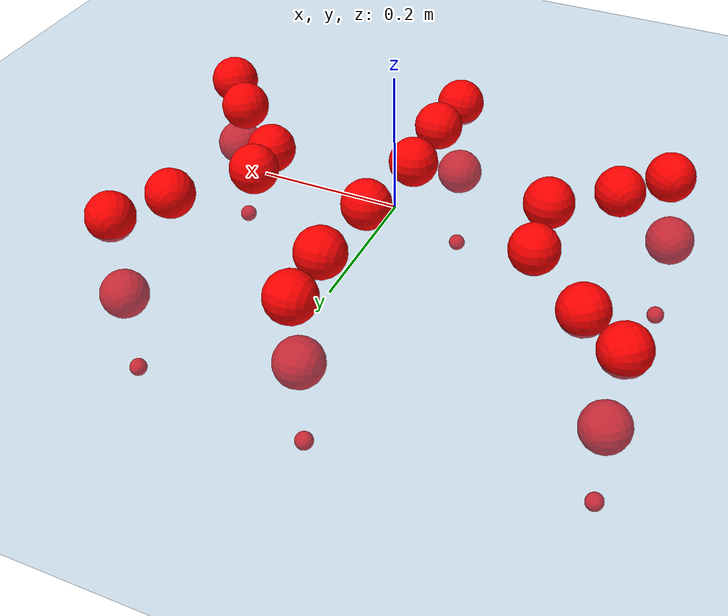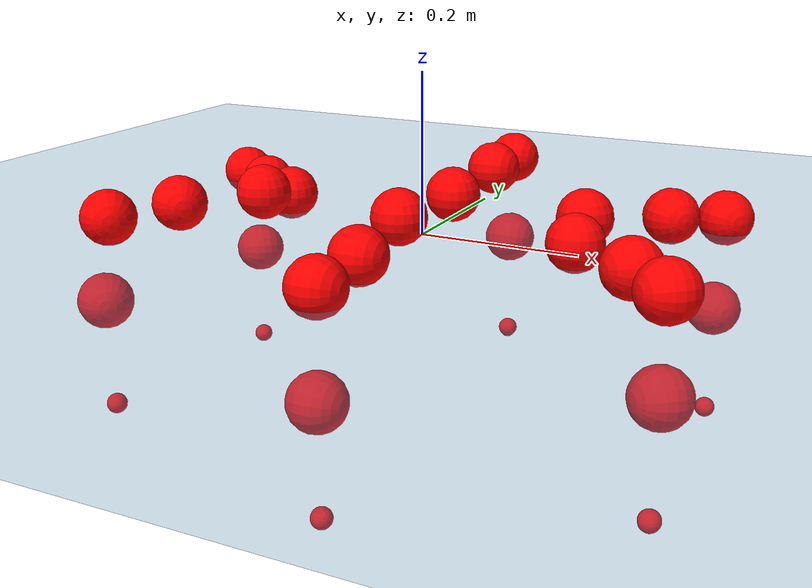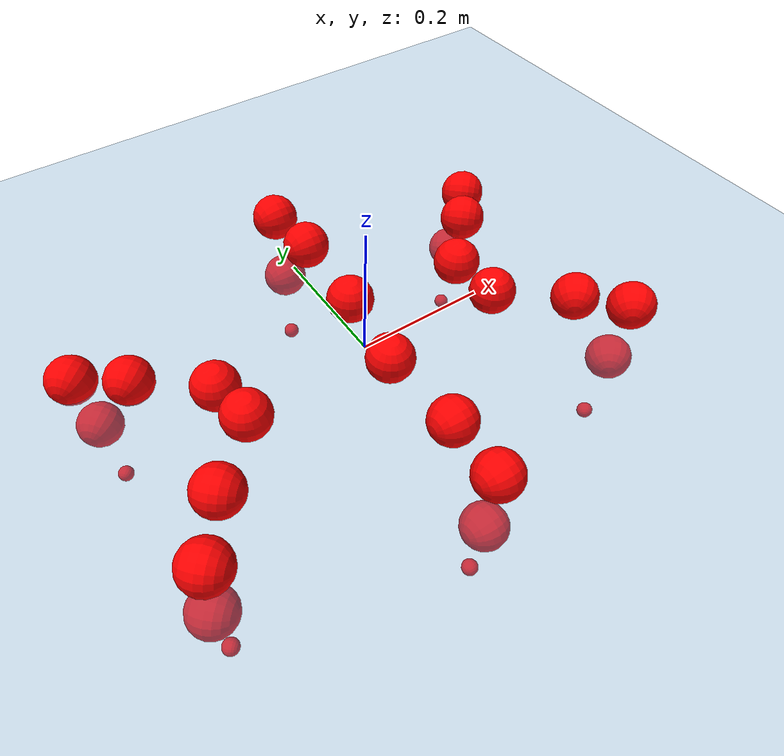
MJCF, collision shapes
<mujoco model="Golem">
  <compiler angle="radian" assetdir="assets" balanceinertia="true" inertiafromgeom="false"/>

  <option timestep="0.005" density="1.2" viscosity="2e-05"/>

  <size nkey="1"/>

  <visual>
    <quality shadowsize="8192"/>
    <map shadowclip="0.5"/>
  </visual>

  <default>
    <default class="/">
      <joint armature="0.01" damping="0.01" frictionloss="0.01"/>
      <geom contype="0" conaffinity="0" group="1" solref="-1000 -80"/>
      <site size="0.01 0.005 0.005" group="5"/>
      <general forcelimited="true" biastype="affine" gainprm="25" biasprm="0 -25 -0.5"/>
      <default class="visual">
        <geom type="mesh" group="2"/>
      </default>
      <default class="collision">
        <geom group="3"/>
      </default>
      <default class="foot">
        <geom size="0.01 0 0" condim="6" group="4" priority="1" solimp="0.015 1 0.01"/>
      </default>
      <default class="reward_collision_sphere">
        <geom group="5" rgba="1 0 0 1"/>
      </default>
    </default>
  </default>

  <asset>
    <texture type="skybox" colorspace="auto" name="//unnamed_texture_0" builtin="gradient" rgb1="0.95 0.95 0.95" rgb2="0.95 0.95 0.95" width="100" height="600"/>
    <texture type="2d" colorspace="auto" name="texplane" builtin="checker" rgb1="0.345 0.575 0.748" rgb2="0.345 0.575 0.748" markrgb="1 1 1" width="512" height="512"/>
    <material name="MatPlane" class="/" texture="texplane" texuniform="true" texrepeat="2 2" specular="0.9"/>
    <mesh name="body" class="/" file="body.stl" scale="0.001 0.001 0.001"/>
    <mesh name="coxa" class="/" file="coxa.stl" scale="0.001 0.001 0.001"/>
    <mesh name="femur" class="/" file="femur.stl" scale="0.001 0.001 0.001"/>
    <mesh name="tibia" class="/" file="tibia.stl" scale="0.001 0.001 0.001"/>
    <mesh name="tarsus" class="/" file="tarsus.stl" scale="0.001 0.001 0.001"/>
  </asset>

  <worldbody>
    <geom name="floor" class="/" size="100 100 0.125" type="plane" group="0" material="MatPlane"/>
    <light name="toplight_shadow" class="/" pos="0 0 5" dir="0.0990148 0.0990148 -0.990148" type="directional" ambient="0.04 0.04 0.04" diffuse="0.55 0.55 0.55" specular="0.12 0.12 0.12"/>
    <light name="toplight_fill" class="/" pos="0 0 5" dir="0.0990148 0.0990148 -0.990148" type="directional" castshadow="false" ambient="0.04 0.04 0.04" diffuse="0.3 0.3 0.3" specular="0.08 0.08 0.08"/>
    <body name="trunk" pos="0.00122028 -0.00152763 0.0026254" quat="0.999999 0.00102313 0.000543472 0.000641694">
      <inertial pos="-0.00908983 -0.00264901 -0.0025679" quat="0.999504 0.0264422 -0.00104434 -0.0170751" mass="2.04016" diaginertia="0.0267314 0.00254544 0.00024124"/>
      <joint name="//unnamed_joint_0" type="free"/>
      <geom name="//unnamed_geom_1" class="/" pos="0 0 0.0321977" quat="1 0 0 0" type="mesh" rgba="0.9 0.9 0.9 1" mesh="body"/>
      <site name="imu" class="/" pos="0.169842 -0.00543114 0.109346" size="0.00865724"/>
      <camera name="track" class="/" pos="0 -1.58137 0" quat="0.707107 0.707107 0 0" mode="trackcom"/>
      <camera name="ego_camera" class="/" pos="0.169441 0 0.0503089" quat="-0.5 -0.5 0.5 0.5"/>
      <body name="coxa_RR" pos="-0.233648 -0.0656465 0.0378251" quat="0.382705 0.00076329 -0.000337983 -0.92387">
        <inertial pos="-0.00139835 0.00648947 -0.00121583" quat="0.999974 0.00397036 -0.00196026 -0.00573439" mass="0.141186" diaginertia="0.041247 0.00359599 0.000327607"/>
        <joint name="coxa_joint_RR" class="/" pos="0 0 0" axis="0.0666942 0.0160973 -0.997644" range="-2.98529 3.11942" armature="0.00741375" damping="0.0338213" frictionloss="0.00880195"/>
        <geom name="//unnamed_geom_2" class="/" type="mesh" rgba="0.2 0.2 0.2 1" mesh="coxa"/>
        <geom name="//unnamed_geom_3" class="reward_collision_sphere" size="0.034629" pos="-0.0391019 0 0"/>
        <body name="femur_RR" pos="0.0664737 -0.00262973 -0.0062509" quat="0.497871 -0.498663 0.50128 0.502174">
          <inertial pos="-0.0026619 0.00124399 0.0068177" quat="0.999985 0.000648823 0.00298453 -0.00457496" mass="0.150177" diaginertia="0.036213 0.00355339 0.000336763"/>
          <joint name="femur_joint_RR" class="/" pos="0 0 0" axis="0.0417948 -0.0357556 -0.998486" range="-3.1462 3.06358" armature="0.00869499" damping="0.0202396" frictionloss="0.00640082"/>
          <geom name="//unnamed_geom_4" class="/" type="mesh" rgba="0.9 0.9 0.9 1" mesh="femur"/>
          <geom name="//unnamed_geom_5" class="reward_collision_sphere" size="0.034629"/>
          <body name="tibia_RR" pos="0.00648367 -0.0879565 0.0135612" quat="-2.21656e-07 1 -7.63135e-06 -3.18031e-06">
            <inertial pos="-0.000496783 0.012425 0.000298775" quat="0.998031 0.007395 -0.0408456 0.0470301" mass="0.129564" diaginertia="0.0323023 0.00299721 0.000309281"/>
            <joint name="tibia_joint_RR" class="/" pos="0 0 0" axis="-0.0299098 -0.0265457 0.9992" stiffness="0.00275064" range="-3.29682 3.19308" armature="0.00773543" damping="0" frictionloss="0.0105596"/>
            <geom name="//unnamed_geom_6" class="/" type="mesh" rgba="0.2 0.2 0.2 1" mesh="tibia"/>
            <geom name="//unnamed_geom_7" class="reward_collision_sphere" size="0.034629"/>
            <body name="tarsus_RR" pos="0.107622 0.012599 0.00627517" quat="0.999995 0.000937179 0.000987301 -0.00301984">
              <inertial pos="0.079174 -0.000838092 0.00804835" quat="0.510648 0.539575 0.470354 0.476304" mass="0.120531" diaginertia="0.0397551 0.00297311 0.000385037"/>
              <joint name="tarsus_joint_RR" class="/" pos="0 0 0" axis="0.00230769 -0.00412381 0.999989" stiffness="0.0133702" range="-2.9829 3.16729" armature="0.0103051" damping="0" frictionloss="0.00458827"/>
              <geom name="//unnamed_geom_8" class="/" type="mesh" rgba="0.9 0.9 0.9 1" mesh="tarsus"/>
              <geom name="foot_1" class="foot" size="0.0066758" pos="0.14598 0 0" quat="0 -0.707107 0 0.707107"/>
              <geom name="//unnamed_geom_10" class="reward_collision_sphere" size="0.034629"/>
              <geom name="//unnamed_geom_11" class="reward_collision_sphere" size="0.0129859" pos="0.140115 0 0"/>
              <site name="foot_1" class="foot" pos="0.14598 0 0" quat="0 -0.707107 0 0.707107" size="0.00865724"/>
            </body>
          </body>
        </body>
      </body>
      <body name="coxa_RM" pos="-0.00181172 -0.0989236 0.0345934" quat="0.710975 0.00308107 0.00295676 -0.703204">
        <inertial pos="-0.00826702 0.00132868 0.0104602" quat="0.999998 8.24394e-05 0.000319266 -0.00176072" mass="0.133416" diaginertia="0.0373339 0.00268427 0.00031785"/>
        <joint name="coxa_joint_RM" class="/" pos="0 0 0" axis="0.00364279 0.0103835 -0.999939" range="-3.13381 3.11124" armature="0.0044567" damping="0.0378636" frictionloss="0.00681924"/>
        <geom name="//unnamed_geom_12" class="/" type="mesh" rgba="0.2 0.2 0.2 1" mesh="coxa"/>
        <geom name="//unnamed_geom_13" class="reward_collision_sphere" size="0.034629" pos="-0.0391019 0 0"/>
        <body name="femur_RM" pos="0.0813418 0.0106126 -0.0113857" quat="0.499945 -0.500002 0.500107 0.499946">
          <inertial pos="-0.0123393 0.00700152 0.00139053" quat="0.999809 0.0153847 -0.00614469 0.010398" mass="0.14881" diaginertia="0.0490018 0.00359071 0.000424843"/>
          <joint name="femur_joint_RM" class="/" pos="0 0 0" axis="-0.0164745 0.0398927 -0.999068" range="-3.16761 3.37048" armature="0.00740616" damping="0" frictionloss="0.0114095"/>
          <geom name="//unnamed_geom_14" class="/" type="mesh" rgba="0.9 0.9 0.9 1" mesh="femur"/>
          <geom name="//unnamed_geom_15" class="reward_collision_sphere" size="0.034629"/>
          <body name="tibia_RM" pos="0.00739424 -0.0887536 -0.00128613" quat="-0.00219785 0.999993 0.00286238 -0.00042849">
            <inertial pos="0.00726641 -0.0136533 0.000185376" quat="0.999386 -0.015165 0.0135097 -0.0285337" mass="0.137488" diaginertia="0.0406023 0.00341145 0.000346687"/>
            <joint name="tibia_joint_RM" class="/" pos="0 0 0" axis="-0.00788988 -0.00571018 0.999953" stiffness="0.0197575" range="-3.1231 2.99002" armature="0.0101165" damping="0" frictionloss="0.00907964"/>
            <geom name="//unnamed_geom_16" class="/" type="mesh" rgba="0.2 0.2 0.2 1" mesh="tibia"/>
            <geom name="//unnamed_geom_17" class="reward_collision_sphere" size="0.034629"/>
            <body name="tarsus_RM" pos="0.128136 0.00538605 0.000812194" quat="1 0.000209494 -0.000405424 -3.35157e-06">
              <inertial pos="0.0676806 0.000486726 -0.00318185" quat="0.502344 0.501847 0.498427 0.497364" mass="0.106688" diaginertia="0.0364407 0.00293519 0.000268034"/>
              <joint name="tarsus_joint_RM" class="/" pos="0 0 0" axis="-0.00130971 0.0140726 0.9999" stiffness="0.00648132" range="-2.95695 3.33727" armature="0.00776855" damping="0.00277715" frictionloss="0.0126161"/>
              <geom name="//unnamed_geom_18" class="/" type="mesh" rgba="0.9 0.9 0.9 1" mesh="tarsus"/>
              <geom name="foot_2" class="foot" size="0.00620973" pos="0.14598 0 0" quat="0 -0.707107 0 0.707107"/>
              <geom name="//unnamed_geom_20" class="reward_collision_sphere" size="0.034629"/>
              <geom name="//unnamed_geom_21" class="reward_collision_sphere" size="0.0129859" pos="0.140115 0 0"/>
              <site name="foot_2" class="foot" pos="0.14598 0 0" quat="0 -0.707107 0 0.707107" size="0.00865724"/>
            </body>
          </body>
        </body>
      </body>
      <body name="coxa_RF" pos="0.232663 -0.055866 0.0216355" quat="0.923487 -0.00168263 0.00078825 -0.383625">
        <inertial pos="0.00229453 0.0118304 -0.00899253" quat="0.998334 -0.0207251 -0.0350482 -0.0408781" mass="0.160654" diaginertia="0.043865 0.00340395 0.000356123"/>
        <joint name="coxa_joint_RF" class="/" pos="0 0 0" axis="-0.0252349 0.0439413 -0.998715" stiffness="0.00864688" range="-3.38257 3.01643" armature="0.0130074" damping="0.0361165" frictionloss="0.00817609"/>
        <geom name="//unnamed_geom_22" class="/" type="mesh" rgba="0.2 0.2 0.2 1" mesh="coxa"/>
        <geom name="//unnamed_geom_23" class="reward_collision_sphere" size="0.034629" pos="-0.0391019 0 0"/>
        <body name="femur_RF" pos="0.0792707 0.00578154 0.00631392" quat="0.499869 -0.500156 0.499718 0.500257">
          <inertial pos="0.00866918 -0.011681 0.00074733" quat="0.999872 -0.0138469 0.00805274 0.000220344" mass="0.124733" diaginertia="0.0338325 0.00264466 0.000283048"/>
          <joint name="femur_joint_RF" class="/" pos="0 0 0" axis="0.00217429 -0.00307601 -0.999993" range="-3.14159 3.25325" armature="0.00888268" damping="0.0122102" frictionloss="0.0111284"/>
          <geom name="//unnamed_geom_24" class="/" type="mesh" rgba="0.9 0.9 0.9 1" mesh="femur"/>
          <geom name="//unnamed_geom_25" class="reward_collision_sphere" size="0.034629"/>
          <body name="tibia_RF" pos="-0.00176663 -0.0791243 -0.0051978" quat="-0.000137776 1 -0.000239434 -0.000430464">
            <inertial pos="0.00126424 -0.00026612 0.0131096" quat="0.998607 -0.0416947 -0.0236437 0.0220389" mass="0.135051" diaginertia="0.0404833 0.00367651 0.000295998"/>
            <joint name="tibia_joint_RF" class="/" pos="0 0 0" axis="0.0229832 -0.00337316 0.99973" stiffness="0.00446056" range="-3.15903 3.01121" armature="0.00906625" damping="0.000569665" frictionloss="0.005799"/>
            <geom name="//unnamed_geom_26" class="/" type="mesh" rgba="0.2 0.2 0.2 1" mesh="tibia"/>
            <geom name="//unnamed_geom_27" class="reward_collision_sphere" size="0.034629"/>
            <body name="tarsus_RF" pos="0.114004 -0.000455285 -0.00163189" quat="0.99999 -0.000203239 -0.00385392 -0.0023026">
              <inertial pos="0.0837358 -0.00194331 -0.0034541" quat="0.498012 0.496859 0.502708 0.502393" mass="0.116163" diaginertia="0.0357186 0.00321045 0.000340709"/>
              <joint name="tarsus_joint_RF" class="/" pos="0 0 0" axis="-0.0185063 -0.0293214 0.999399" stiffness="0.0250042" range="-3.32731 3.14194" armature="0.00836555" damping="0.0459136" frictionloss="0.00797291"/>
              <geom name="//unnamed_geom_28" class="/" type="mesh" rgba="0.9 0.9 0.9 1" mesh="tarsus"/>
              <geom name="foot_3" class="foot" size="0.00805316" pos="0.14598 0 0" quat="0 -0.707107 0 0.707107"/>
              <geom name="//unnamed_geom_30" class="reward_collision_sphere" size="0.034629"/>
              <geom name="//unnamed_geom_31" class="reward_collision_sphere" size="0.0129859" pos="0.140115 0 0"/>
              <site name="foot_3" class="foot" pos="0.14598 0 0" quat="0 -0.707107 0 0.707107" size="0.00865724"/>
            </body>
          </body>
        </body>
      </body>
      <body name="coxa_LR" pos="-0.241274 0.067531 0.0182373" quat="0.383648 -0.00109993 0.000688992 0.923478">
        <inertial pos="0.00861622 0.0093123 0.000534262" quat="0.998984 -0.0364179 0.00542333 0.0259989" mass="0.141244" diaginertia="0.0346512 0.00379202 0.000416298"/>
        <joint name="coxa_joint_LR" class="/" pos="0 0 0" axis="0.00364515 0.00316265 -0.999988" range="-3.00547 3.03122" armature="0.00661973" damping="0.0149405" frictionloss="0.0088791"/>
        <geom name="//unnamed_geom_32" class="/" type="mesh" rgba="0.2 0.2 0.2 1" mesh="coxa"/>
        <geom name="//unnamed_geom_33" class="reward_collision_sphere" size="0.034629" pos="-0.0391019 0 0"/>
        <body name="femur_LR" pos="0.081047 0.00806571 -0.00841856" quat="0.499568 -0.499117 0.501004 0.500309">
          <inertial pos="-0.000693792 0.0138447 -0.00170801" quat="1 -0.00035764 1.87905e-05 0.000427156" mass="0.126672" diaginertia="0.0430665 0.00275352 0.000371417"/>
          <joint name="femur_joint_LR" class="/" pos="0 0 0" axis="0.00565093 -0.00340097 0.999978" stiffness="0.010737" range="-3.36125 3.10945" armature="0.00886655" damping="0.0760252" frictionloss="0.00859402"/>
          <geom name="//unnamed_geom_34" class="/" type="mesh" rgba="0.9 0.9 0.9 1" mesh="femur"/>
          <geom name="//unnamed_geom_35" class="reward_collision_sphere" size="0.034629"/>
          <body name="tibia_LR" pos="0.00216345 -0.0784656 0.0132754" quat="-0.000442503 0.999995 0.000789206 0.00311861">
            <inertial pos="-0.00682171 0.00922894 0.00676935" quat="0.998603 -0.0137426 0.0258415 0.0439855" mass="0.124916" diaginertia="0.0409935 0.00326726 0.000311627"/>
            <joint name="tibia_joint_LR" class="/" pos="0 0 0" axis="-0.0184617 0.00474637 -0.999818" range="-3.26851 2.91267" armature="0.0070684" damping="0.0394248" frictionloss="0.00859872"/>
            <geom name="//unnamed_geom_36" class="/" type="mesh" rgba="0.2 0.2 0.2 1" mesh="tibia"/>
            <geom name="//unnamed_geom_37" class="reward_collision_sphere" size="0.034629"/>
            <body name="tarsus_LR" pos="0.122101 0.00272486 0.013255" quat="0.999991 0.00247842 0.00238814 -0.00257081">
              <inertial pos="0.0793987 0.0123965 0.0111012" quat="0.490622 0.513241 0.485648 0.509921" mass="0.133682" diaginertia="0.0359829 0.00338937 0.000373232"/>
              <joint name="tarsus_joint_LR" class="/" pos="0 0 0" axis="0.0495015 -0.0253198 -0.998453" stiffness="0.0551853" range="-3.03905 3.27882" armature="0.0124104" damping="0.0525595" frictionloss="0.0116852"/>
              <geom name="//unnamed_geom_38" class="/" type="mesh" rgba="0.9 0.9 0.9 1" mesh="tarsus"/>
              <geom name="foot_4" class="foot" size="0.00425288" pos="0.14598 0 0" quat="0.707107 0 -0.707107 0"/>
              <geom name="//unnamed_geom_40" class="reward_collision_sphere" size="0.034629"/>
              <geom name="//unnamed_geom_41" class="reward_collision_sphere" size="0.0129859" pos="0.140115 0 0"/>
              <site name="foot_4" class="foot" pos="0.14598 0 0" quat="0.707107 0 -0.707107 0" size="0.00865724"/>
            </body>
          </body>
        </body>
      </body>
      <body name="coxa_LM" pos="0.013063 0.100009 0.0364745" quat="0.707259 -0.000397553 3.50962e-05 0.706955">
        <inertial pos="0.00417473 0.00850202 -0.00421979" quat="0.998575 -0.0226142 -0.011995 -0.0468303" mass="0.121976" diaginertia="0.030155 0.00257423 0.000274417"/>
        <joint name="coxa_joint_LM" class="/" pos="0 0 0" axis="-0.0298977 -0.059502 -0.99778" stiffness="0.0203776" range="-3.11531 3.09106" armature="0.00724887" damping="0" frictionloss="0.00555277"/>
        <geom name="//unnamed_geom_42" class="/" type="mesh" rgba="0.2 0.2 0.2 1" mesh="coxa"/>
        <geom name="//unnamed_geom_43" class="reward_collision_sphere" size="0.034629" pos="-0.0391019 0 0"/>
        <body name="femur_LM" pos="0.0873315 -0.00293364 0.00861099" quat="0.500212 -0.499875 0.499429 0.500483">
          <inertial pos="-0.00844222 0.000987855 0.00273589" quat="0.998992 0.0155605 -0.0193732 -0.0373853" mass="0.107758" diaginertia="0.0380457 0.00231296 0.000297882"/>
          <joint name="femur_joint_LM" class="/" pos="0 0 0" axis="-0.00167575 -0.00114269 0.999998" range="-3.20148 3.14036" armature="0.008646" damping="0" frictionloss="0.0121815"/>
          <geom name="//unnamed_geom_44" class="/" type="mesh" rgba="0.9 0.9 0.9 1" mesh="femur"/>
          <geom name="//unnamed_geom_45" class="reward_collision_sphere" size="0.034629"/>
          <body name="tibia_LM" pos="0.00310463 -0.0876303 0.00479394" quat="0.00436343 0.999987 0.00236433 -0.000622695">
            <inertial pos="-0.00743315 0.0013856 0.0104878" quat="0.998454 0.00784035 0.0446606 -0.0321374" mass="0.130689" diaginertia="0.0377598 0.00262712 0.00033876"/>
            <joint name="tibia_joint_LM" class="/" pos="0 0 0" axis="-0.0318315 0.00448623 -0.999483" stiffness="0.0579177" range="-3.16374 3.13944" armature="0.00797199" damping="0" frictionloss="0.0128306"/>
            <geom name="//unnamed_geom_46" class="/" type="mesh" rgba="0.2 0.2 0.2 1" mesh="tibia"/>
            <geom name="//unnamed_geom_47" class="reward_collision_sphere" size="0.034629"/>
            <body name="tarsus_LM" pos="0.115201 -0.010233 0.00108234" quat="0.999986 -0.00127557 -0.00134465 0.0049763">
              <inertial pos="0.0764176 0.000385603 -0.00631595" quat="0.460218 0.537711 0.490566 0.508342" mass="0.112771" diaginertia="0.0314119 0.00327318 0.000324464"/>
              <joint name="tarsus_joint_LM" class="/" pos="0 0 0" axis="-0.0568059 0.0322478 -0.997864" range="-3.14299 3.1391" armature="0.00867864" damping="0.0268369" frictionloss="0.0038765"/>
              <geom name="//unnamed_geom_48" class="/" type="mesh" rgba="0.9 0.9 0.9 1" mesh="tarsus"/>
              <geom name="foot_5" class="foot" size="0.00883467" pos="0.14598 0 0" quat="0.707107 0 -0.707107 0"/>
              <geom name="//unnamed_geom_50" class="reward_collision_sphere" size="0.034629"/>
              <geom name="//unnamed_geom_51" class="reward_collision_sphere" size="0.0129859" pos="0.140115 0 0"/>
              <site name="foot_5" class="foot" pos="0.14598 0 0" quat="0.707107 0 -0.707107 0" size="0.00865724"/>
            </body>
          </body>
        </body>
      </body>
      <body name="coxa_LF" pos="0.220599 0.0700547 0.0326224" quat="0.923777 -0.000386455 -0.000905852 0.38293">
        <inertial pos="0.00157308 0.00124828 -0.0105069" quat="0.999025 -0.0231521 -0.0362264 -0.0100323" mass="0.140418" diaginertia="0.0424879 0.00262414 0.000350092"/>
        <joint name="coxa_joint_LF" class="/" pos="0 0 0" axis="-0.0224999 -0.0432199 -0.998812" range="-3.11379 3.11618" armature="0.0132338" damping="0.0151524" frictionloss="0.00273481"/>
        <geom name="//unnamed_geom_52" class="/" type="mesh" rgba="0.2 0.2 0.2 1" mesh="coxa"/>
        <geom name="//unnamed_geom_53" class="reward_collision_sphere" size="0.034629" pos="-0.0391019 0 0"/>
        <body name="femur_LF" pos="0.0793318 0.00239064 -0.00961542" quat="0.499753 -0.500132 0.499703 0.50041">
          <inertial pos="0.0133296 -0.00214769 -0.0137898" quat="1 -6.09138e-05 -0.000910557 -8.86811e-05" mass="0.140123" diaginertia="0.0325548 0.00309688 0.000331072"/>
          <joint name="femur_joint_LF" class="/" pos="0 0 0" axis="0.00252766 -0.00186603 0.999995" range="-3.12267 3.13003" armature="0.00543283" damping="0" frictionloss="0.00758278"/>
          <geom name="//unnamed_geom_54" class="/" type="mesh" rgba="0.9 0.9 0.9 1" mesh="femur"/>
          <geom name="//unnamed_geom_55" class="reward_collision_sphere" size="0.034629"/>
          <body name="tibia_LF" pos="0.0117799 -0.0838579 0.00737438" quat="-0.000465357 0.999994 0.00149564 -0.0031767">
            <inertial pos="0.00513643 0.0131728 -0.00198885" quat="0.999999 -0.000413962 0.000305131 0.000875753" mass="0.143698" diaginertia="0.0511832 0.00356782 0.000360471"/>
            <joint name="tibia_joint_LF" class="/" pos="0 0 0" axis="-0.00353544 -0.00551265 -0.999979" stiffness="0.0165735" range="-3.16487 3.12571" armature="0.00471187" damping="0.0413115" frictionloss="0.00916213"/>
            <geom name="//unnamed_geom_56" class="/" type="mesh" rgba="0.2 0.2 0.2 1" mesh="tibia"/>
            <geom name="//unnamed_geom_57" class="reward_collision_sphere" size="0.034629"/>
            <body name="tarsus_LF" pos="0.124525 0.00114842 -0.0124722" quat="1 -0.000308771 0.000562926 -6.59729e-06">
              <inertial pos="0.0771603 -0.00654715 0.00113285" quat="0.477872 0.52289 0.484624 0.513191" mass="0.168602" diaginertia="0.0414148 0.00403611 0.000351901"/>
              <joint name="tarsus_joint_LF" class="/" pos="0 0 0" axis="-0.0230551 -0.00734096 -0.999707" range="-3.18175 3.11507" armature="0.00413919" damping="0.0558307" frictionloss="0.0142257"/>
              <geom name="//unnamed_geom_58" class="/" type="mesh" rgba="0.9 0.9 0.9 1" mesh="tarsus"/>
              <geom name="foot_6" class="foot" size="0.00727697" pos="0.14598 0 0" quat="0.707107 0 -0.707107 0"/>
              <geom name="//unnamed_geom_60" class="reward_collision_sphere" size="0.034629"/>
              <geom name="//unnamed_geom_61" class="reward_collision_sphere" size="0.0129859" pos="0.140115 0 0"/>
              <site name="foot_6" class="foot" pos="0.14598 0 0" quat="0.707107 0 -0.707107 0" size="0.00865724"/>
            </body>
          </body>
        </body>
      </body>
    </body>
  </worldbody>

  <contact>
    <pair class="/" geom1="floor" geom2="foot_1" name="//unnamed_contact_0"/>
    <pair class="/" geom1="floor" geom2="foot_2" name="//unnamed_contact_1"/>
    <pair class="/" geom1="floor" geom2="foot_3" name="//unnamed_contact_2"/>
    <pair class="/" geom1="floor" geom2="foot_4" name="//unnamed_contact_3"/>
    <pair class="/" geom1="floor" geom2="foot_5" name="//unnamed_contact_4"/>
    <pair class="/" geom1="floor" geom2="foot_6" name="//unnamed_contact_5"/>
  </contact>

  <actuator>
    <general name="coxa_joint_RR" class="/" joint="coxa_joint_RR" forcerange="-7.29035 7.29035" gainprm="15.8878" biasprm="0 -15.8878 -0.4711"/>
    <general name="femur_joint_RR" class="/" joint="femur_joint_RR" forcerange="-6.35355 6.35355" gainprm="15.8878" biasprm="0 -15.8878 -0.4711"/>
    <general name="tibia_joint_RR" class="/" joint="tibia_joint_RR" forcerange="-7.07802 7.07802" gainprm="15.8878" biasprm="0 -15.8878 -0.4711"/>
    <general name="tarsus_joint_RR" class="/" joint="tarsus_joint_RR" forcerange="-3.7714 3.7714" gainprm="15.8878" biasprm="0 -15.8878 -0.4711"/>
    <general name="coxa_joint_RM" class="/" joint="coxa_joint_RM" forcerange="-6.25662 6.25662" gainprm="15.8878" biasprm="0 -15.8878 -0.4711"/>
    <general name="femur_joint_RM" class="/" joint="femur_joint_RM" forcerange="-6.42583 6.42583" gainprm="15.8878" biasprm="0 -15.8878 -0.4711"/>
    <general name="tibia_joint_RM" class="/" joint="tibia_joint_RM" forcerange="-6.66683 6.66683" gainprm="15.8878" biasprm="0 -15.8878 -0.4711"/>
    <general name="tarsus_joint_RM" class="/" joint="tarsus_joint_RM" forcerange="-3.37328 3.37328" gainprm="15.8878" biasprm="0 -15.8878 -0.4711"/>
    <general name="coxa_joint_RF" class="/" joint="coxa_joint_RF" forcerange="-4.81674 4.81674" gainprm="15.8878" biasprm="0 -15.8878 -0.4711"/>
    <general name="femur_joint_RF" class="/" joint="femur_joint_RF" forcerange="-9.13081 9.13081" gainprm="15.8878" biasprm="0 -15.8878 -0.4711"/>
    <general name="tibia_joint_RF" class="/" joint="tibia_joint_RF" forcerange="-4.52191 4.52191" gainprm="15.8878" biasprm="0 -15.8878 -0.4711"/>
    <general name="tarsus_joint_RF" class="/" joint="tarsus_joint_RF" forcerange="-8.25522 8.25522" gainprm="15.8878" biasprm="0 -15.8878 -0.4711"/>
    <general name="coxa_joint_LR" class="/" joint="coxa_joint_LR" forcerange="-7.97434 7.97434" gainprm="15.8878" biasprm="0 -15.8878 -0.4711"/>
    <general name="femur_joint_LR" class="/" joint="femur_joint_LR" forcerange="-6.54477 6.54477" gainprm="15.8878" biasprm="0 -15.8878 -0.4711"/>
    <general name="tibia_joint_LR" class="/" joint="tibia_joint_LR" forcerange="-6.37123 6.37123" gainprm="15.8878" biasprm="0 -15.8878 -0.4711"/>
    <general name="tarsus_joint_LR" class="/" joint="tarsus_joint_LR" forcerange="-7.99178 7.99178" gainprm="15.8878" biasprm="0 -15.8878 -0.4711"/>
    <general name="coxa_joint_LM" class="/" joint="coxa_joint_LM" forcerange="-6.67074 6.67074" gainprm="15.8878" biasprm="0 -15.8878 -0.4711"/>
    <general name="femur_joint_LM" class="/" joint="femur_joint_LM" forcerange="-8.11313 8.11313" gainprm="15.8878" biasprm="0 -15.8878 -0.4711"/>
    <general name="tibia_joint_LM" class="/" joint="tibia_joint_LM" forcerange="-7.37214 7.37214" gainprm="15.8878" biasprm="0 -15.8878 -0.4711"/>
    <general name="tarsus_joint_LM" class="/" joint="tarsus_joint_LM" forcerange="-6.76466 6.76466" gainprm="15.8878" biasprm="0 -15.8878 -0.4711"/>
    <general name="coxa_joint_LF" class="/" joint="coxa_joint_LF" forcerange="-8.82849 8.82849" gainprm="15.8878" biasprm="0 -15.8878 -0.4711"/>
    <general name="femur_joint_LF" class="/" joint="femur_joint_LF" forcerange="-7.98047 7.98047" gainprm="15.8878" biasprm="0 -15.8878 -0.4711"/>
    <general name="tibia_joint_LF" class="/" joint="tibia_joint_LF" forcerange="-4.67661 4.67661" gainprm="15.8878" biasprm="0 -15.8878 -0.4711"/>
    <general name="tarsus_joint_LF" class="/" joint="tarsus_joint_LF" forcerange="-7.28508 7.28508" gainprm="15.8878" biasprm="0 -15.8878 -0.4711"/>
  </actuator>

  <sensor>
    <gyro site="imu" name="imu_angular_velocity"/>
    <velocimeter site="imu" name="imu_linear_velocity"/>
    <framelinvel objtype="site" objname="foot_1" name="foot_1_global_linear_velocity"/>
    <framelinvel objtype="site" objname="foot_2" name="foot_2_global_linear_velocity"/>
    <framelinvel objtype="site" objname="foot_3" name="foot_3_global_linear_velocity"/>
    <framelinvel objtype="site" objname="foot_4" name="foot_4_global_linear_velocity"/>
    <framelinvel objtype="site" objname="foot_5" name="foot_5_global_linear_velocity"/>
    <framelinvel objtype="site" objname="foot_6" name="foot_6_global_linear_velocity"/>
  </sensor>

  <keyframe>
    <key name="home" qpos="0 0 0.1457 1 0 0 0 0 0 0 0 0 0 0 0 0 0 0 0 0 0 0 0 0 0 0 0 0 0 0 0"/>
  </keyframe>
</mujoco>
